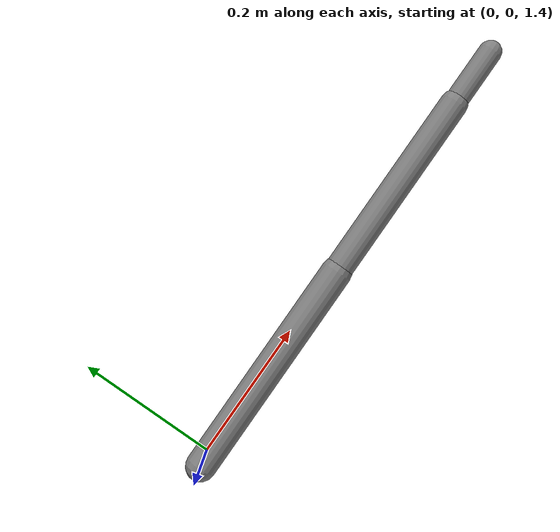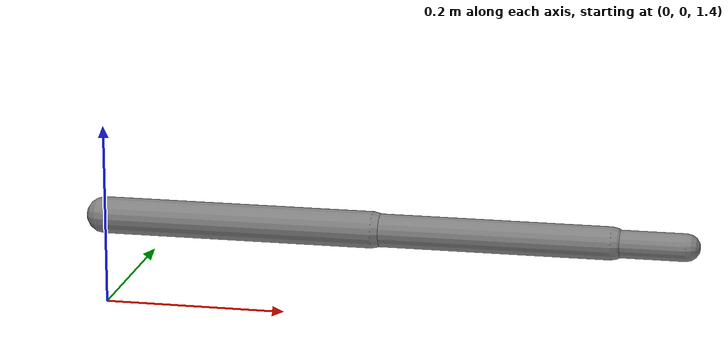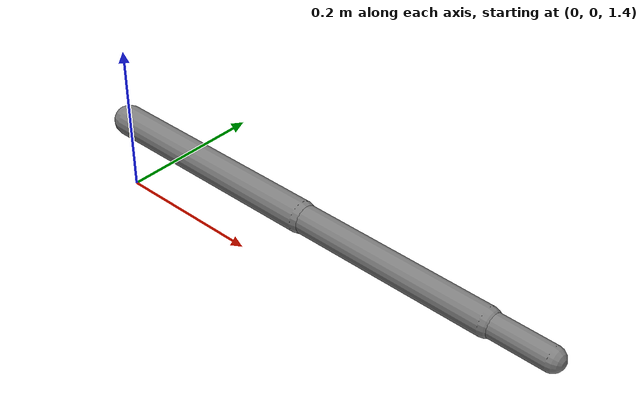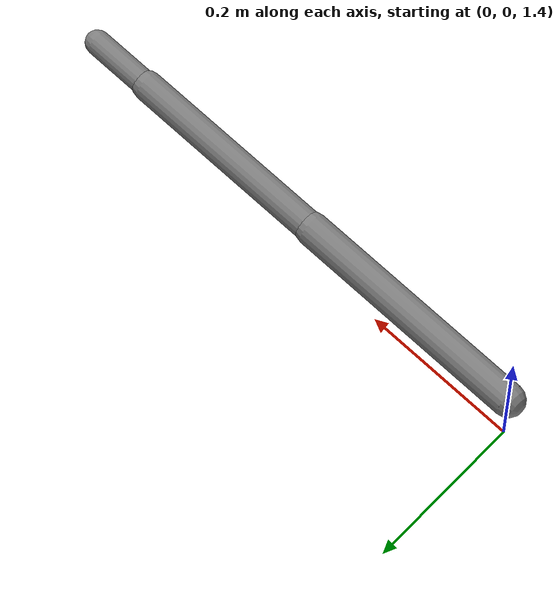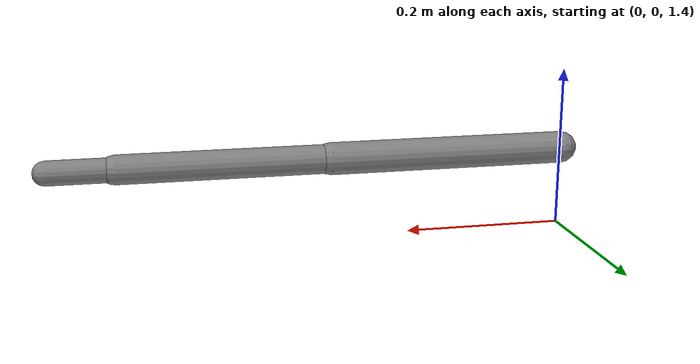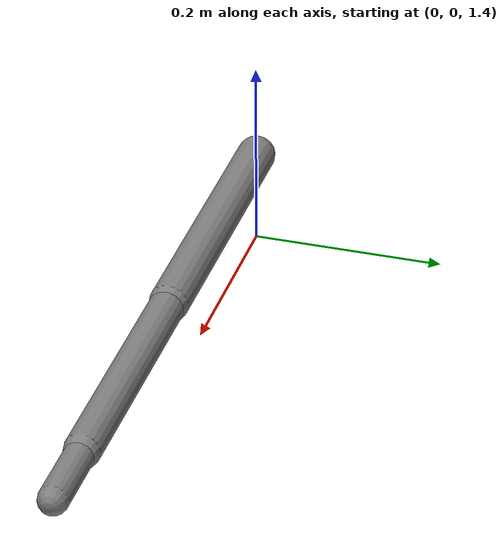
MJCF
<?xml version="1.0" encoding="utf-8"?>
<mujoco model="dart_robot_3link_planar_SPEC">
  <compiler angle="degree" inertiafromgeom="true"/>

  <option timestep="0.001" gravity="0 0 -9.81"/>

  <default>
    <joint limited="true" damping="0.1"/>
    <geom type="capsule" condim="1" friction="0.6 0.005 0.0001"/>
  </default>

  <asset/>

  <worldbody>
    <!-- Fixed mount at oche (PDF A1): shoulder (0,0,1.50) -->
    <body name="shoulder_mount" pos="0 0 1.50">
      <site name="shoulder_origin" pos="0 0 0" size="0.01"/>
      <!-- Upper arm: hinge about **y** = sagittal plane (x-z motion) -->
      <body name="upper_arm" pos="0 0 0">
        <joint name="shoulder" type="hinge" axis="0 1 0" range="-60 180"/>
        <geom name="upper_arm_geom" fromto="0 0 0 0.30 0 0" size="0.02" mass="2.1"/>
        <body name="forearm" pos="0.30 0 0">
          <joint name="elbow" type="hinge" axis="0 1 0" range="-145 0"/>
          <geom name="forearm_geom" fromto="0 0 0 0.26 0 0" size="0.018" mass="1.2"/>
          <body name="hand" pos="0.26 0 0">
            <joint name="wrist" type="hinge" axis="0 1 0" range="-70 70"/>
            <geom name="hand_geom" fromto="0 0 0 0.08 0 0" size="0.015" mass="0.4"/>
            <!-- Dart release point at fingertip (PDF A2) -->
            <site name="release_site" pos="0.08 0 0" size="0.005" rgba="1 0 0 0.5"/>
          </body>
        </body>
      </body>
    </body>
  </worldbody>

  <actuator>
    <!-- PDF A2: shoulder ±100, elbow ±70, wrist ±20 Nm -->
    <motor name="tau_shoulder" joint="shoulder" gear="1" ctrllimited="true" ctrlrange="-100 100"/>
    <motor name="tau_elbow" joint="elbow" gear="1" ctrllimited="true" ctrlrange="-70 70"/>
    <motor name="tau_wrist" joint="wrist" gear="1" ctrllimited="true" ctrlrange="-20 20"/>
  </actuator>

  <!-- PDF A2 keyframe: cocked arm (degrees in MJCF because compiler angle=degree on bodies... key uses qpos in radians by default - MuJoCo key qpos is radians) -->
  <keyframe>
    <key name="cocked" qpos="-0.9599 -1.5708 -0.3491"/>
    <!-- -55°, -90°, -20° — overhand posture: shoulder raised, forearm above elbow (no downward past-parallel) -->
  </keyframe>
</mujoco>
